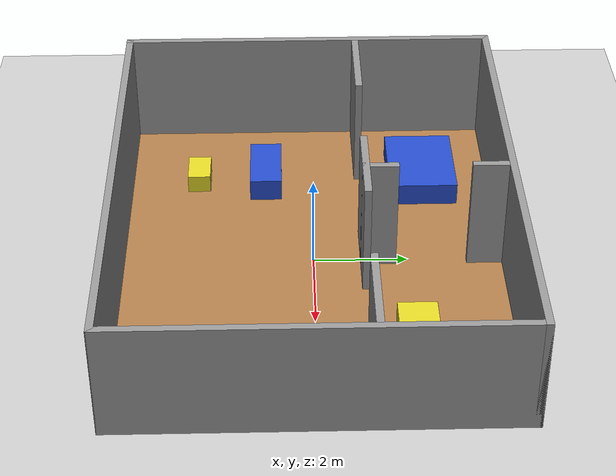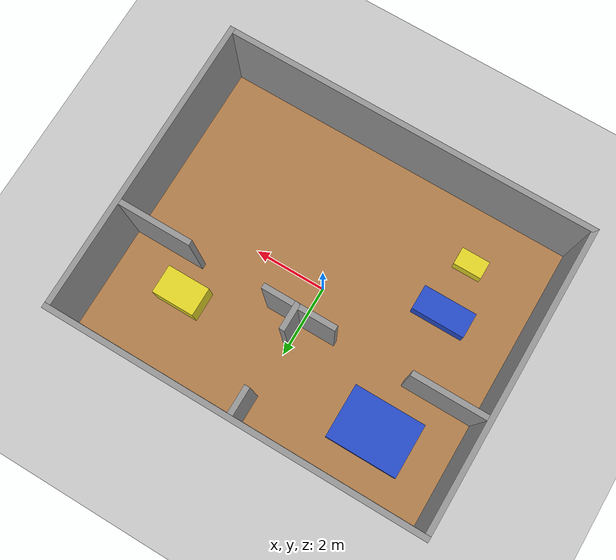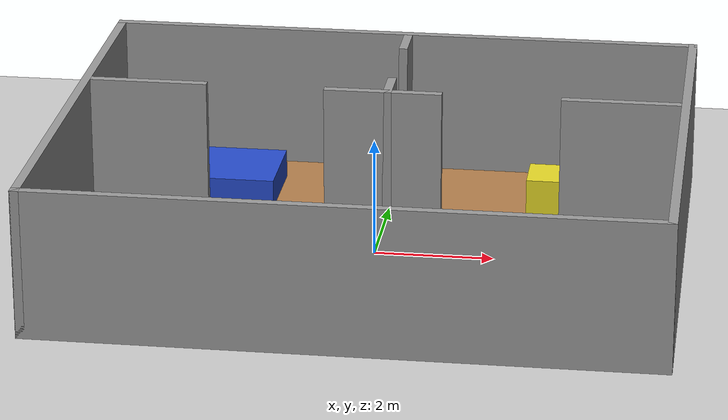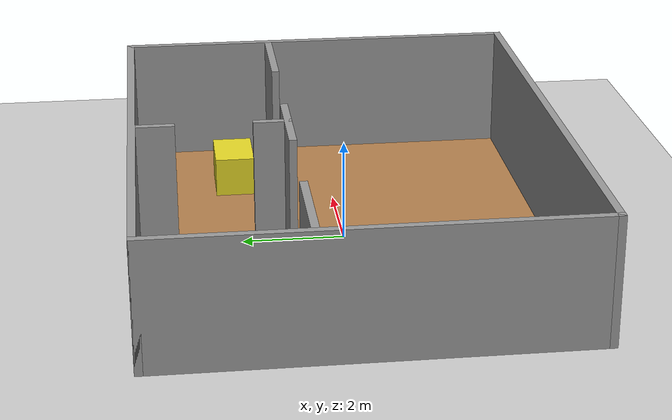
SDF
<?xml version="1.0" ?>
<sdf version="1.6">
  <world name="house">

    <!-- ====== Physics ====== -->
    <gravity>0 0 -9.81</gravity>
    <physics name="default_physics" type="ode">
      <max_step_size>0.001</max_step_size>
      <real_time_factor>1.0</real_time_factor>
      <real_time_update_rate>1000</real_time_update_rate>
      <ode>
        <solver>
          <type>quick</type>
          <iters>100</iters>
          <sor>1.3</sor>
        </solver>
        <constraints>
          <cfm>0.0</cfm>
          <erp>0.2</erp>
          <contact_max_correcting_vel>100.0</contact_max_correcting_vel>
          <contact_surface_layer>0.001</contact_surface_layer>
        </constraints>
      </ode>
    </physics>

    <!-- ====== Lighting ====== -->
    <include><uri>model://sun</uri></include>

    <light name="ambient_light" type="ambient">
      <cast_shadows>false</cast_shadows>
      <diffuse>0.4 0.4 0.4 1</diffuse>
      <specular>0.1 0.1 0.1 1</specular>
    </light>

    <!-- ====== Ground plane (for physics) ====== -->
    <include><uri>model://ground_plane</uri></include>

    <!-- ====== Gazebo state plugin ====== -->
    <plugin name="gazebo_ros_state" filename="libgazebo_ros_state.so">
      <ros><namespace>/gazebo</namespace></ros>
      <update_rate>10.0</update_rate>
    </plugin>

    <!-- ====================================================
         FLOOR  (visual only — collision handled by ground_plane)
         ==================================================== -->
    <model name="floor">
      <static>true</static>
      <pose>0 0 0.001 0 0 0</pose>
      <link name="link">
        <visual name="visual">
          <geometry><box><size>10 8 0.002</size></box></geometry>
          <material>
            <script>
              <uri>file://media/materials/scripts/gazebo.material</uri>
              <name>Gazebo/Wood</name>
            </script>
          </material>
        </visual>
      </link>
    </model>

    <!-- ====================================================
         OUTER WALLS
         ==================================================== -->

    <!-- North wall: center (0, 4.075, 1.25), size (10.3, 0.15, 2.5) -->
    <model name="wall_north">
      <static>true</static>
      <pose>0 4.075 1.25 0 0 0</pose>
      <link name="link">
        <collision name="collision">
          <geometry><box><size>10.3 0.15 2.5</size></box></geometry>
        </collision>
        <visual name="visual">
          <geometry><box><size>10.3 0.15 2.5</size></box></geometry>
          <material>
            <script>
              <uri>file://media/materials/scripts/gazebo.material</uri>
              <name>Gazebo/Grey</name>
            </script>
          </material>
        </visual>
      </link>
    </model>

    <!-- South wall: center (0, -4.075, 1.25), size (10.3, 0.15, 2.5) -->
    <model name="wall_south">
      <static>true</static>
      <pose>0 -4.075 1.25 0 0 0</pose>
      <link name="link">
        <collision name="collision">
          <geometry><box><size>10.3 0.15 2.5</size></box></geometry>
        </collision>
        <visual name="visual">
          <geometry><box><size>10.3 0.15 2.5</size></box></geometry>
          <material>
            <script>
              <uri>file://media/materials/scripts/gazebo.material</uri>
              <name>Gazebo/Grey</name>
            </script>
          </material>
        </visual>
      </link>
    </model>

    <!-- West wall: center (-5.075, 0, 1.25), size (0.15, 8.3, 2.5) -->
    <model name="wall_west">
      <static>true</static>
      <pose>-5.075 0 1.25 0 0 0</pose>
      <link name="link">
        <collision name="collision">
          <geometry><box><size>0.15 8.3 2.5</size></box></geometry>
        </collision>
        <visual name="visual">
          <geometry><box><size>0.15 8.3 2.5</size></box></geometry>
          <material>
            <script>
              <uri>file://media/materials/scripts/gazebo.material</uri>
              <name>Gazebo/Grey</name>
            </script>
          </material>
        </visual>
      </link>
    </model>

    <!-- East wall: center (5.075, 0, 1.25), size (0.15, 8.3, 2.5) -->
    <model name="wall_east">
      <static>true</static>
      <pose>5.075 0 1.25 0 0 0</pose>
      <link name="link">
        <collision name="collision">
          <geometry><box><size>0.15 8.3 2.5</size></box></geometry>
        </collision>
        <visual name="visual">
          <geometry><box><size>0.15 8.3 2.5</size></box></geometry>
          <material>
            <script>
              <uri>file://media/materials/scripts/gazebo.material</uri>
              <name>Gazebo/Grey</name>
            </script>
          </material>
        </visual>
      </link>
    </model>

    <model name="wall_interior_y1_segA">
      <static>true</static>
      <pose>-4 1.075 1.25 0 0 0</pose>
      <link name="link">
        <collision name="collision">
          <geometry><box><size>2 0.15 2.5</size></box></geometry>
        </collision>
        <visual name="visual">
          <geometry><box><size>2 0.15 2.5</size></box></geometry>
          <material>
            <script>
              <uri>file://media/materials/scripts/gazebo.material</uri>
              <name>Gazebo/Grey</name>
            </script>
          </material>
        </visual>
      </link>
    </model>

    <model name="wall_interior_y1_segB">
      <static>true</static>
      <pose>0 1.075 1.25 0 0 0</pose>
      <link name="link">
        <collision name="collision">
          <geometry><box><size>2 0.15 2.5</size></box></geometry>
        </collision>
        <visual name="visual">
          <geometry><box><size>2 0.15 2.5</size></box></geometry>
          <material>
            <script>
              <uri>file://media/materials/scripts/gazebo.material</uri>
              <name>Gazebo/Grey</name>
            </script>
          </material>
        </visual>
      </link>
    </model>

    <model name="wall_interior_y1_segC">
      <static>true</static>
      <pose>4 1.075 1.25 0 0 0</pose>
      <link name="link">
        <collision name="collision">
          <geometry><box><size>2 0.15 2.5</size></box></geometry>
        </collision>
        <visual name="visual">
          <geometry><box><size>2 0.15 2.5</size></box></geometry>
          <material>
            <script>
              <uri>file://media/materials/scripts/gazebo.material</uri>
              <name>Gazebo/Grey</name>
            </script>
          </material>
        </visual>
      </link>
    </model>

    <model name="wall_interior_x0_segA">
      <static>true</static>
      <pose>0.075 1.375 1.25 0 0 0</pose>
      <link name="link">
        <collision name="collision">
          <geometry><box><size>0.15 0.75 2.5</size></box></geometry>
        </collision>
        <visual name="visual">
          <geometry><box><size>0.15 0.75 2.5</size></box></geometry>
          <material>
            <script>
              <uri>file://media/materials/scripts/gazebo.material</uri>
              <name>Gazebo/Grey</name>
            </script>
          </material>
        </visual>
      </link>
    </model>

    <model name="wall_interior_x0_segB">
      <static>true</static>
      <pose>0.075 3.625 1.25 0 0 0</pose>
      <link name="link">
        <collision name="collision">
          <geometry><box><size>0.15 0.75 2.5</size></box></geometry>
        </collision>
        <visual name="visual">
          <geometry><box><size>0.15 0.75 2.5</size></box></geometry>
          <material>
            <script>
              <uri>file://media/materials/scripts/gazebo.material</uri>
              <name>Gazebo/Grey</name>
            </script>
          </material>
        </visual>
      </link>
    </model>

    <!-- ====================================================
         FURNITURE
         ==================================================== -->

    <!-- Sofa (Living Room): center (-3, -1, 0.25), size (1.5, 0.7, 0.5) -->
    <model name="furniture_sofa">
      <static>true</static>
      <pose>-3 -1 0.25 0 0 0</pose>
      <link name="link">
        <collision name="collision">
          <geometry><box><size>1.5 0.7 0.5</size></box></geometry>
        </collision>
        <visual name="visual">
          <geometry><box><size>1.5 0.7 0.5</size></box></geometry>
          <material>
            <script>
              <uri>file://media/materials/scripts/gazebo.material</uri>
              <name>Gazebo/Blue</name>
            </script>
          </material>
        </visual>
      </link>
    </model>

    <!-- Coffee table (Living Room): center (-3, -2.5, 0.2), size (0.8, 0.5, 0.4) -->
    <model name="furniture_coffee_table">
      <static>true</static>
      <pose>-3 -2.5 0.2 0 0 0</pose>
      <link name="link">
        <collision name="collision">
          <geometry><box><size>0.8 0.5 0.4</size></box></geometry>
        </collision>
        <visual name="visual">
          <geometry><box><size>0.8 0.5 0.4</size></box></geometry>
          <material>
            <script>
              <uri>file://media/materials/scripts/gazebo.material</uri>
              <name>Gazebo/DarkYellow</name>
            </script>
          </material>
        </visual>
      </link>
    </model>

    <!-- Dining table (Kitchen): center (3, 2, 0.4), size (1.2, 0.8, 0.8) -->
    <model name="furniture_dining_table">
      <static>true</static>
      <pose>3 2 0.4 0 0 0</pose>
      <link name="link">
        <collision name="collision">
          <geometry><box><size>1.2 0.8 0.8</size></box></geometry>
        </collision>
        <visual name="visual">
          <geometry><box><size>1.2 0.8 0.8</size></box></geometry>
          <material>
            <script>
              <uri>file://media/materials/scripts/gazebo.material</uri>
              <name>Gazebo/DarkYellow</name>
            </script>
          </material>
        </visual>
      </link>
    </model>

    <!-- Bed (Bedroom): center (-3, 2.5, 0.25), size (2.0, 1.5, 0.5) -->
    <model name="furniture_bed">
      <static>true</static>
      <pose>-3 2.5 0.25 0 0 0</pose>
      <link name="link">
        <collision name="collision">
          <geometry><box><size>2.0 1.5 0.5</size></box></geometry>
        </collision>
        <visual name="visual">
          <geometry><box><size>2.0 1.5 0.5</size></box></geometry>
          <material>
            <script>
              <uri>file://media/materials/scripts/gazebo.material</uri>
              <name>Gazebo/Blue</name>
            </script>
          </material>
        </visual>
      </link>
    </model>

  </world>
</sdf>
